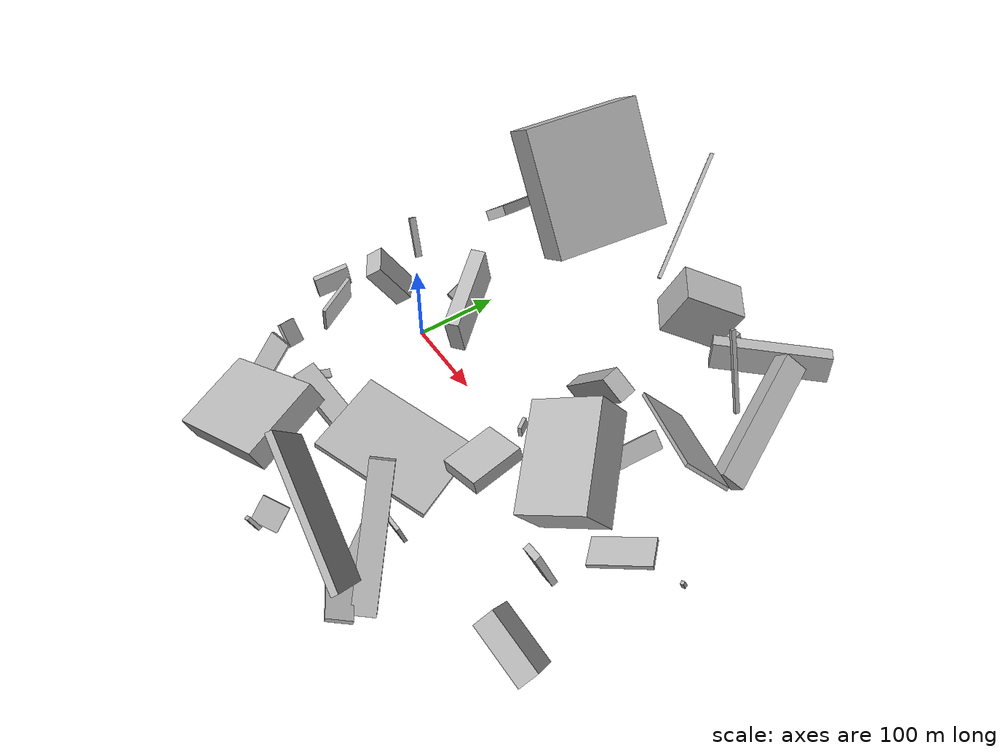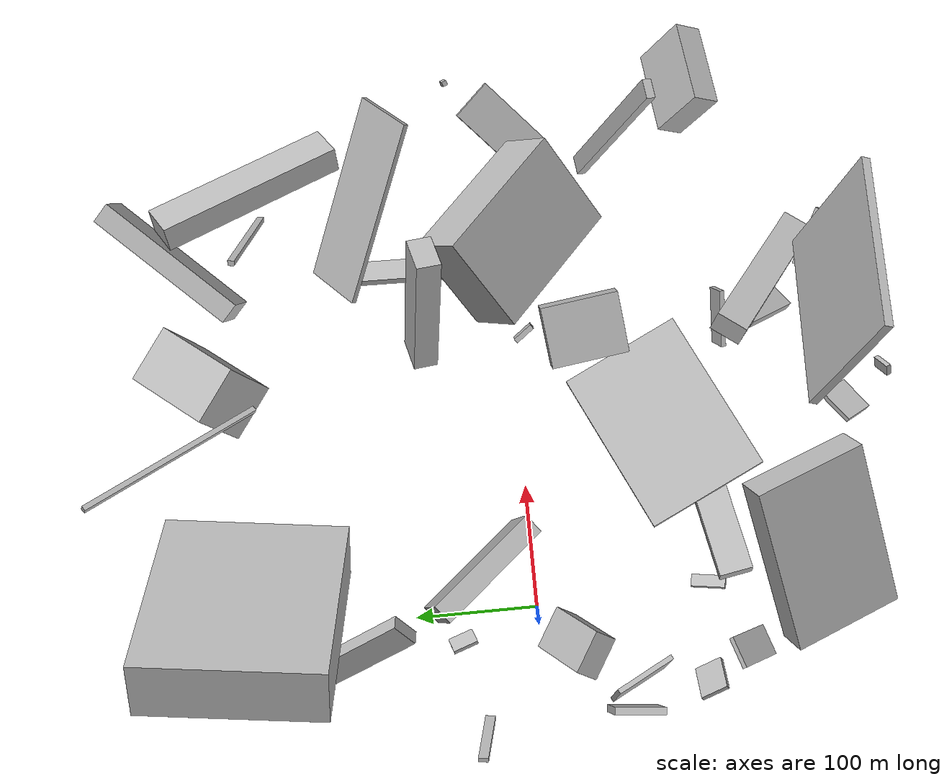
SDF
<sdf version="1.6">
 <world name="default">
  <scene>
   <sky><clouds><speed>12</speed></clouds></sky>
   <ambient>0.4 0.4 0.4 1</ambient>
   <background>0.7 0.7 0.7 1</background>
   <shadows>1</shadows>
  </scene>
  <gravity>0 0 -9.8066</gravity>
  <magnetic_field>6e-06 2.3e-05 -4.2e-05</magnetic_field>
  <physics default="0" name="default_physics" type="ode">
   <ode>
    <solver>
     <type>quick</type>
     <iters>10</iters>
     <sor>1.0</sor>
     <use_dynamic_moi_rescaling>0</use_dynamic_moi_rescaling>
    </solver>
    <constraints>
     <cfm>0</cfm>
     <erp>0.2</erp>
     <contact_max_correcting_vel>100</contact_max_correcting_vel>
     <contact_surface_layer>0.001</contact_surface_layer>
    </constraints>
   </ode>
   <max_step_size>0.004</max_step_size>
   <real_time_factor>1</real_time_factor>
   <real_time_update_rate>250</real_time_update_rate>
  </physics>
  <light name="sun" type="directional">
   <pose>0 0 10 0 0 0</pose>
   <diffuse>0.8 0.8 0.8 1</diffuse>
   <specular>0.2 0.2 0.2 1</specular>
   <attenuation>
    <range>1000</range>
    <constant>0.9</constant>
    <linear>0.01</linear>
    <quadratic>0.001</quadratic>
   </attenuation>
   <direction>-0.5 0.1 -0.9</direction>
  </light>
  <model name="building_1">
   <static>0</static>
   <pose>158.08201292369395 -257.6694241254826 17.241823803892835 1.1759356580311278 0.6087822742997112 -1.1729489631092656</pose>
   <link name="link">
    <gravity>0</gravity>
    <pose>0 0 15.0 0 0 0</pose>
    <collision name="collision"><geometry><box><size>28 4 30</size></box></geometry></collision>
    <visual name="visual">
     <cast_shadows>0</cast_shadows>
     <geometry><box><size>28 4 30</size></box></geometry>
     <material>
      <script>
       <uri>model://HANNAS_wall/materials/scripts</uri>
       <uri>model://HANNAS_wall/materials/textures</uri>
       <name>vrc/HANNAS_wall</name>
      </script>
     </material>
    </visual>
   </link>
  </model>
  <model name="building_2">
   <static>0</static>
   <pose>228.38957552910387 276.1913152473966 18.58643334928423 0.8368209683425826 -1.3527665762094954 -2.2299393907137524</pose>
   <link name="link">
    <gravity>0</gravity>
    <pose>0 0 7.0 0 0 0</pose>
    <collision name="collision"><geometry><box><size>30 24 14</size></box></geometry></collision>
    <visual name="visual">
     <cast_shadows>0</cast_shadows>
     <geometry><box><size>30 24 14</size></box></geometry>
     <material>
      <script>
       <uri>model://HANNAS_wall/materials/scripts</uri>
       <uri>model://HANNAS_wall/materials/textures</uri>
       <name>vrc/HANNAS_wall</name>
      </script>
     </material>
    </visual>
   </link>
  </model>
  <model name="building_3">
   <static>0</static>
   <pose>-73.63025985590721 -126.66632645295493 16.348650918210026 -1.0559939253068562 -0.8061386053319477 -3.1069106370532205</pose>
   <link name="link">
    <gravity>0</gravity>
    <pose>0 0 12.0 0 0 0</pose>
    <collision name="collision"><geometry><box><size>29 4 24</size></box></geometry></collision>
    <visual name="visual">
     <cast_shadows>0</cast_shadows>
     <geometry><box><size>29 4 24</size></box></geometry>
     <material>
      <script>
       <uri>model://HANNAS_wall/materials/scripts</uri>
       <uri>model://HANNAS_wall/materials/textures</uri>
       <name>vrc/HANNAS_wall</name>
      </script>
     </material>
    </visual>
   </link>
  </model>
  <model name="building_4">
   <static>0</static>
   <pose>275.0975432354596 136.8514776186292 51.67618885070994 -0.9597505385460232 0.7846900366965949 -1.5404241153357165</pose>
   <link name="link">
    <gravity>0</gravity>
    <pose>0 0 75.0 0 0 0</pose>
    <collision name="collision"><geometry><box><size>4 53 150</size></box></geometry></collision>
    <visual name="visual">
     <cast_shadows>0</cast_shadows>
     <geometry><box><size>4 53 150</size></box></geometry>
     <material>
      <script>
       <uri>model://HANNAS_wall/materials/scripts</uri>
       <uri>model://HANNAS_wall/materials/textures</uri>
       <name>vrc/HANNAS_wall</name>
      </script>
     </material>
    </visual>
   </link>
  </model>
  <model name="building_5">
   <static>0</static>
   <pose>305.8679926692404 7.878734348791873 70.53475906793574 0.4233290998863652 -0.5003996843155747 0.5929087097435953</pose>
   <link name="link">
    <gravity>0</gravity>
    <pose>0 0 24.5 0 0 0</pose>
    <collision name="collision"><geometry><box><size>82 118 49</size></box></geometry></collision>
    <visual name="visual">
     <cast_shadows>0</cast_shadows>
     <geometry><box><size>82 118 49</size></box></geometry>
     <material>
      <script>
       <uri>model://HANNAS_wall/materials/scripts</uri>
       <uri>model://HANNAS_wall/materials/textures</uri>
       <name>vrc/HANNAS_wall</name>
      </script>
     </material>
    </visual>
   </link>
  </model>
  <model name="building_6">
   <static>0</static>
   <pose>-79.58050956523323 45.52393119245544 39.72220743574811 -0.12280819347652301 -0.5148002949094109 -0.05647966265904579</pose>
   <link name="link">
    <gravity>0</gravity>
    <pose>0 0 24.5 0 0 0</pose>
    <collision name="collision"><geometry><box><size>4 8 49</size></box></geometry></collision>
    <visual name="visual">
     <cast_shadows>0</cast_shadows>
     <geometry><box><size>4 8 49</size></box></geometry>
     <material>
      <script>
       <uri>model://HANNAS_wall/materials/scripts</uri>
       <uri>model://HANNAS_wall/materials/textures</uri>
       <name>vrc/HANNAS_wall</name>
      </script>
     </material>
    </visual>
   </link>
  </model>
  <model name="building_7">
   <static>0</static>
   <pose>385.42476027139793 132.17518853048253 44.66316636843997 1.0730829654481486 0.8546077688751499 -3.117853075915193</pose>
   <link name="link">
    <gravity>0</gravity>
    <pose>0 0 75.0 0 0 0</pose>
    <collision name="collision"><geometry><box><size>21 28 150</size></box></geometry></collision>
    <visual name="visual">
     <cast_shadows>0</cast_shadows>
     <geometry><box><size>21 28 150</size></box></geometry>
     <material>
      <script>
       <uri>model://HANNAS_wall/materials/scripts</uri>
       <uri>model://HANNAS_wall/materials/textures</uri>
       <name>vrc/HANNAS_wall</name>
      </script>
     </material>
    </visual>
   </link>
  </model>
  <model name="building_8">
   <static>0</static>
   <pose>216.5259605064437 72.62493990349034 59.762055815550475 0.28927325394465914 0.6171794518009955 0.28268091921587896</pose>
   <link name="link">
    <gravity>0</gravity>
    <pose>0 0 57.5 0 0 0</pose>
    <collision name="collision"><geometry><box><size>29 19 115</size></box></geometry></collision>
    <visual name="visual">
     <cast_shadows>0</cast_shadows>
     <geometry><box><size>29 19 115</size></box></geometry>
     <material>
      <script>
       <uri>model://HANNAS_wall/materials/scripts</uri>
       <uri>model://HANNAS_wall/materials/textures</uri>
       <name>vrc/HANNAS_wall</name>
      </script>
     </material>
    </visual>
   </link>
  </model>
  <model name="building_9">
   <static>0</static>
   <pose>121.27934465914367 -70.93715313184552 21.128263305373515 1.5748436657842808 -1.35691102034158 0.44038809225841946</pose>
   <link name="link">
    <gravity>0</gravity>
    <pose>0 0 51.0 0 0 0</pose>
    <collision name="collision"><geometry><box><size>7 139 102</size></box></geometry></collision>
    <visual name="visual">
     <cast_shadows>0</cast_shadows>
     <geometry><box><size>7 139 102</size></box></geometry>
     <material>
      <script>
       <uri>model://HANNAS_wall/materials/scripts</uri>
       <uri>model://HANNAS_wall/materials/textures</uri>
       <name>vrc/HANNAS_wall</name>
      </script>
     </material>
    </visual>
   </link>
  </model>
  <model name="building_10">
   <static>0</static>
   <pose>200.383680689203 234.0221336000441 54.80245564666838 0.41826751191937495 -0.034402580651764325 2.509333237757612</pose>
   <link name="link">
    <gravity>0</gravity>
    <pose>0 0 30.0 0 0 0</pose>
    <collision name="collision"><geometry><box><size>46 72 60</size></box></geometry></collision>
    <visual name="visual">
     <cast_shadows>0</cast_shadows>
     <geometry><box><size>46 72 60</size></box></geometry>
     <material>
      <script>
       <uri>model://HANNAS_wall/materials/scripts</uri>
       <uri>model://HANNAS_wall/materials/textures</uri>
       <name>vrc/HANNAS_wall</name>
      </script>
     </material>
    </visual>
   </link>
  </model>
  <model name="building_11">
   <static>0</static>
   <pose>79.96062565985606 206.66498411087713 104.57247178295954 0.01802455723620245 -0.636370646368807 -0.14380296180324625</pose>
   <link name="link">
    <gravity>0</gravity>
    <pose>0 0 75.0 0 0 0</pose>
    <collision name="collision"><geometry><box><size>48 138 150</size></box></geometry></collision>
    <visual name="visual">
     <cast_shadows>0</cast_shadows>
     <geometry><box><size>48 138 150</size></box></geometry>
     <material>
      <script>
       <uri>model://HANNAS_wall/materials/scripts</uri>
       <uri>model://HANNAS_wall/materials/textures</uri>
       <name>vrc/HANNAS_wall</name>
      </script>
     </material>
    </visual>
   </link>
  </model>
  <model name="building_12">
   <static>0</static>
   <pose>224.4309948084175 -167.0699410593514 22.892888956155524 -1.7999680427729399 0.2535183848331891 3.116439039784371</pose>
   <link name="link">
    <gravity>0</gravity>
    <pose>0 0 2.0 0 0 0</pose>
    <collision name="collision"><geometry><box><size>46 21 4</size></box></geometry></collision>
    <visual name="visual">
     <cast_shadows>0</cast_shadows>
     <geometry><box><size>46 21 4</size></box></geometry>
     <material>
      <script>
       <uri>model://HANNAS_wall/materials/scripts</uri>
       <uri>model://HANNAS_wall/materials/textures</uri>
       <name>vrc/HANNAS_wall</name>
      </script>
     </material>
    </visual>
   </link>
  </model>
  <model name="building_13">
   <static>0</static>
   <pose>405.70244840304923 -137.62182526239624 37.169055673819564 0.6220821605747783 0.3490231923631773 0.09895231617825283</pose>
   <link name="link">
    <gravity>0</gravity>
    <pose>0 0 24.0 0 0 0</pose>
    <collision name="collision"><geometry><box><size>67 23 48</size></box></geometry></collision>
    <visual name="visual">
     <cast_shadows>0</cast_shadows>
     <geometry><box><size>67 23 48</size></box></geometry>
     <material>
      <script>
       <uri>model://HANNAS_wall/materials/scripts</uri>
       <uri>model://HANNAS_wall/materials/textures</uri>
       <name>vrc/HANNAS_wall</name>
      </script>
     </material>
    </visual>
   </link>
  </model>
  <model name="building_14">
   <static>0</static>
   <pose>35.842032216103256 35.167403083344766 69.60417254360397 1.5365853378120118 -0.24611349932090337 2.2469730066942595</pose>
   <link name="link">
    <gravity>0</gravity>
    <pose>0 0 8.5 0 0 0</pose>
    <collision name="collision"><geometry><box><size>100 56 17</size></box></geometry></collision>
    <visual name="visual">
     <cast_shadows>0</cast_shadows>
     <geometry><box><size>100 56 17</size></box></geometry>
     <material>
      <script>
       <uri>model://HANNAS_wall/materials/scripts</uri>
       <uri>model://HANNAS_wall/materials/textures</uri>
       <name>vrc/HANNAS_wall</name>
      </script>
     </material>
    </visual>
   </link>
  </model>
  <model name="building_15">
   <static>0</static>
   <pose>226.15814995604413 -57.48973263107129 37.11931119584247 0.04811328892627683 -0.23743563111233792 0.12075919198541457</pose>
   <link name="link">
    <gravity>0</gravity>
    <pose>0 0 8.0 0 0 0</pose>
    <collision name="collision"><geometry><box><size>50 63 16</size></box></geometry></collision>
    <visual name="visual">
     <cast_shadows>0</cast_shadows>
     <geometry><box><size>50 63 16</size></box></geometry>
     <material>
      <script>
       <uri>model://HANNAS_wall/materials/scripts</uri>
       <uri>model://HANNAS_wall/materials/textures</uri>
       <name>vrc/HANNAS_wall</name>
      </script>
     </material>
    </visual>
   </link>
  </model>
  <model name="building_16">
   <static>0</static>
   <pose>302.3253435042612 -253.6513665033827 90.88210284003023 0.469387581003383 -0.9538694973448872 -0.6633868299580744</pose>
   <link name="link">
    <gravity>0</gravity>
    <pose>0 0 75.0 0 0 0</pose>
    <collision name="collision"><geometry><box><size>111 7 150</size></box></geometry></collision>
    <visual name="visual">
     <cast_shadows>0</cast_shadows>
     <geometry><box><size>111 7 150</size></box></geometry>
     <material>
      <script>
       <uri>model://HANNAS_wall/materials/scripts</uri>
       <uri>model://HANNAS_wall/materials/textures</uri>
       <name>vrc/HANNAS_wall</name>
      </script>
     </material>
    </visual>
   </link>
  </model>
  <model name="building_17">
   <static>0</static>
   <pose>-43.527701254435335 220.78288916978138 86.35852591867486 0.8802764431292286 0.8257085458996849 -0.11124310279611437</pose>
   <link name="link">
    <gravity>0</gravity>
    <pose>0 0 75.0 0 0 0</pose>
    <collision name="collision"><geometry><box><size>11 23 150</size></box></geometry></collision>
    <visual name="visual">
     <cast_shadows>0</cast_shadows>
     <geometry><box><size>11 23 150</size></box></geometry>
     <material>
      <script>
       <uri>model://HANNAS_wall/materials/scripts</uri>
       <uri>model://HANNAS_wall/materials/textures</uri>
       <name>vrc/HANNAS_wall</name>
      </script>
     </material>
    </visual>
   </link>
  </model>
  <model name="building_18">
   <static>0</static>
   <pose>298.05860222426196 -266.1673396562099 35.60202423335008 1.923487091743966 -0.2935525634515207 -2.124209222297914</pose>
   <link name="link">
    <gravity>0</gravity>
    <pose>0 0 24.5 0 0 0</pose>
    <collision name="collision"><geometry><box><size>27 4 49</size></box></geometry></collision>
    <visual name="visual">
     <cast_shadows>0</cast_shadows>
     <geometry><box><size>27 4 49</size></box></geometry>
     <material>
      <script>
       <uri>model://HANNAS_wall/materials/scripts</uri>
       <uri>model://HANNAS_wall/materials/textures</uri>
       <name>vrc/HANNAS_wall</name>
      </script>
     </material>
    </visual>
   </link>
  </model>
  <model name="building_19">
   <static>0</static>
   <pose>226.19758394982478 -8.451173420106622 65.85134098285737 -2.4840107212658347 -1.346080959041846 3.136000336274892</pose>
   <link name="link">
    <gravity>0</gravity>
    <pose>0 0 2.0 0 0 0</pose>
    <collision name="collision"><geometry><box><size>11 17 4</size></box></geometry></collision>
    <visual name="visual">
     <cast_shadows>0</cast_shadows>
     <geometry><box><size>11 17 4</size></box></geometry>
     <material>
      <script>
       <uri>model://HANNAS_wall/materials/scripts</uri>
       <uri>model://HANNAS_wall/materials/textures</uri>
       <name>vrc/HANNAS_wall</name>
      </script>
     </material>
    </visual>
   </link>
  </model>
  <model name="building_20">
   <static>0</static>
   <pose>259.1933397785576 -191.5862818052468 61.096753508295535 1.383780396361651 -0.8195570267815211 -0.5023616128084755</pose>
   <link name="link">
    <gravity>0</gravity>
    <pose>0 0 12.5 0 0 0</pose>
    <collision name="collision"><geometry><box><size>17 150 25</size></box></geometry></collision>
    <visual name="visual">
     <cast_shadows>0</cast_shadows>
     <geometry><box><size>17 150 25</size></box></geometry>
     <material>
      <script>
       <uri>model://HANNAS_wall/materials/scripts</uri>
       <uri>model://HANNAS_wall/materials/textures</uri>
       <name>vrc/HANNAS_wall</name>
      </script>
     </material>
    </visual>
   </link>
  </model>
  <model name="building_21">
   <static>0</static>
   <pose>59.079625360184494 -153.0407798189851 27.576028834646166 0.37998704604289396 -0.007979940974029516 1.7451003073224234</pose>
   <link name="link">
    <gravity>0</gravity>
    <pose>0 0 6.5 0 0 0</pose>
    <collision name="collision"><geometry><box><size>27 94 13</size></box></geometry></collision>
    <visual name="visual">
     <cast_shadows>0</cast_shadows>
     <geometry><box><size>27 94 13</size></box></geometry>
     <material>
      <script>
       <uri>model://HANNAS_wall/materials/scripts</uri>
       <uri>model://HANNAS_wall/materials/textures</uri>
       <name>vrc/HANNAS_wall</name>
      </script>
     </material>
    </visual>
   </link>
  </model>
  <model name="building_22">
   <static>0</static>
   <pose>283.94608652988006 52.22546603142442 14.993941383417841 -0.08475866443249563 0.6947430045200008 -0.07994380883181963</pose>
   <link name="link">
    <gravity>0</gravity>
    <pose>0 0 2.5 0 0 0</pose>
    <collision name="collision"><geometry><box><size>22 150 5</size></box></geometry></collision>
    <visual name="visual">
     <cast_shadows>0</cast_shadows>
     <geometry><box><size>22 150 5</size></box></geometry>
     <material>
      <script>
       <uri>model://HANNAS_wall/materials/scripts</uri>
       <uri>model://HANNAS_wall/materials/textures</uri>
       <name>vrc/HANNAS_wall</name>
      </script>
     </material>
    </visual>
   </link>
  </model>
  <model name="building_23">
   <static>0</static>
   <pose>-16.03438259032801 64.64808614149055 12.04805009651788 -0.8564229889120394 -0.1262879049649051 1.885725959307969</pose>
   <link name="link">
    <gravity>0</gravity>
    <pose>0 0 6.5 0 0 0</pose>
    <collision name="collision"><geometry><box><size>21 4 13</size></box></geometry></collision>
    <visual name="visual">
     <cast_shadows>0</cast_shadows>
     <geometry><box><size>21 4 13</size></box></geometry>
     <material>
      <script>
       <uri>model://HANNAS_wall/materials/scripts</uri>
       <uri>model://HANNAS_wall/materials/textures</uri>
       <name>vrc/HANNAS_wall</name>
      </script>
     </material>
    </visual>
   </link>
  </model>
  <model name="building_24">
   <static>0</static>
   <pose>168.88354534723237 -290.53351582228277 57.31229777636473 0.9239891372605091 -0.23084603026543 1.9078911956608726</pose>
   <link name="link">
    <gravity>0</gravity>
    <pose>0 0 4.5 0 0 0</pose>
    <collision name="collision"><geometry><box><size>4 16 9</size></box></geometry></collision>
    <visual name="visual">
     <cast_shadows>0</cast_shadows>
     <geometry><box><size>4 16 9</size></box></geometry>
     <material>
      <script>
       <uri>model://HANNAS_wall/materials/scripts</uri>
       <uri>model://HANNAS_wall/materials/textures</uri>
       <name>vrc/HANNAS_wall</name>
      </script>
     </material>
    </visual>
   </link>
  </model>
  <model name="building_25">
   <static>0</static>
   <pose>223.9402797322493 -185.69994618472242 38.871733990768796 -2.742228888908568 0.7246567469381249 2.4773671571878735</pose>
   <link name="link">
    <gravity>0</gravity>
    <pose>0 0 28.0 0 0 0</pose>
    <collision name="collision"><geometry><box><size>7 24 56</size></box></geometry></collision>
    <visual name="visual">
     <cast_shadows>0</cast_shadows>
     <geometry><box><size>7 24 56</size></box></geometry>
     <material>
      <script>
       <uri>model://HANNAS_wall/materials/scripts</uri>
       <uri>model://HANNAS_wall/materials/textures</uri>
       <name>vrc/HANNAS_wall</name>
      </script>
     </material>
    </visual>
   </link>
  </model>
  <model name="building_26">
   <static>0</static>
   <pose>-56.880510000062365 -175.69822101948202 29.83291441440175 1.8396796976182466 0.6869547300863401 2.062839050343259</pose>
   <link name="link">
    <gravity>0</gravity>
    <pose>0 0 13.0 0 0 0</pose>
    <collision name="collision"><geometry><box><size>4 45 26</size></box></geometry></collision>
    <visual name="visual">
     <cast_shadows>0</cast_shadows>
     <geometry><box><size>4 45 26</size></box></geometry>
     <material>
      <script>
       <uri>model://HANNAS_wall/materials/scripts</uri>
       <uri>model://HANNAS_wall/materials/textures</uri>
       <name>vrc/HANNAS_wall</name>
      </script>
     </material>
    </visual>
   </link>
  </model>
  <model name="building_27">
   <static>0</static>
   <pose>367.9570067733086 -93.6772947886152 81.13233620970868 1.7641467407704614 -0.34312869941126295 1.6291023383155403</pose>
   <link name="link">
    <gravity>0</gravity>
    <pose>0 0 7.5 0 0 0</pose>
    <collision name="collision"><geometry><box><size>7 150 15</size></box></geometry></collision>
    <visual name="visual">
     <cast_shadows>0</cast_shadows>
     <geometry><box><size>7 150 15</size></box></geometry>
     <material>
      <script>
       <uri>model://HANNAS_wall/materials/scripts</uri>
       <uri>model://HANNAS_wall/materials/textures</uri>
       <name>vrc/HANNAS_wall</name>
      </script>
     </material>
    </visual>
   </link>
  </model>
  <model name="building_28">
   <static>0</static>
   <pose>261.39766837527225 212.86696131641037 78.25886968251145 1.5676942077056844 -1.3976423280454298 2.3862957653896415</pose>
   <link name="link">
    <gravity>0</gravity>
    <pose>0 0 63.0 0 0 0</pose>
    <collision name="collision"><geometry><box><size>32 17 126</size></box></geometry></collision>
    <visual name="visual">
     <cast_shadows>0</cast_shadows>
     <geometry><box><size>32 17 126</size></box></geometry>
     <material>
      <script>
       <uri>model://HANNAS_wall/materials/scripts</uri>
       <uri>model://HANNAS_wall/materials/textures</uri>
       <name>vrc/HANNAS_wall</name>
      </script>
     </material>
    </visual>
   </link>
  </model>
  <model name="building_29">
   <static>0</static>
   <pose>-48.33101580385296 -100.52153105287705 39.13189948470187 -0.8511399929686215 -1.2415872731073072 -0.24793093477400238</pose>
   <link name="link">
    <gravity>0</gravity>
    <pose>0 0 25.5 0 0 0</pose>
    <collision name="collision"><geometry><box><size>49 4 51</size></box></geometry></collision>
    <visual name="visual">
     <cast_shadows>0</cast_shadows>
     <geometry><box><size>49 4 51</size></box></geometry>
     <material>
      <script>
       <uri>model://HANNAS_wall/materials/scripts</uri>
       <uri>model://HANNAS_wall/materials/textures</uri>
       <name>vrc/HANNAS_wall</name>
      </script>
     </material>
    </visual>
   </link>
  </model>
  <model name="building_30">
   <static>0</static>
   <pose>12.241853532942216 -127.62691641988019 20.459645507790363 -1.2302990780160525 -0.3838555363540205 2.903627483871733</pose>
   <link name="link">
    <gravity>0</gravity>
    <pose>0 0 14.0 0 0 0</pose>
    <collision name="collision"><geometry><box><size>10 4 28</size></box></geometry></collision>
    <visual name="visual">
     <cast_shadows>0</cast_shadows>
     <geometry><box><size>10 4 28</size></box></geometry>
     <material>
      <script>
       <uri>model://HANNAS_wall/materials/scripts</uri>
       <uri>model://HANNAS_wall/materials/textures</uri>
       <name>vrc/HANNAS_wall</name>
      </script>
     </material>
    </visual>
   </link>
  </model>
  <model name="building_31">
   <static>0</static>
   <pose>102.22705278459748 -214.9143795439408 82.3672367588407 2.6761296029972037 -1.070293981641505 -2.3850736334365266</pose>
   <link name="link">
    <gravity>0</gravity>
    <pose>0 0 75.0 0 0 0</pose>
    <collision name="collision"><geometry><box><size>26 94 150</size></box></geometry></collision>
    <visual name="visual">
     <cast_shadows>0</cast_shadows>
     <geometry><box><size>26 94 150</size></box></geometry>
     <material>
      <script>
       <uri>model://HANNAS_wall/materials/scripts</uri>
       <uri>model://HANNAS_wall/materials/textures</uri>
       <name>vrc/HANNAS_wall</name>
      </script>
     </material>
    </visual>
   </link>
  </model>
  <model name="building_32">
   <static>0</static>
   <pose>184.46185955820448 195.60849692761255 135.76817522568155 0.3945207445395452 0.9336019572260813 2.5332791568018846</pose>
   <link name="link">
    <gravity>0</gravity>
    <pose>0 0 74.5 0 0 0</pose>
    <collision name="collision"><geometry><box><size>4 4 149</size></box></geometry></collision>
    <visual name="visual">
     <cast_shadows>0</cast_shadows>
     <geometry><box><size>4 4 149</size></box></geometry>
     <material>
      <script>
       <uri>model://HANNAS_wall/materials/scripts</uri>
       <uri>model://HANNAS_wall/materials/textures</uri>
       <name>vrc/HANNAS_wall</name>
      </script>
     </material>
    </visual>
   </link>
  </model>
  <model name="building_33">
   <static>0</static>
   <pose>-76.63462785594803 -70.94473434978215 61.80101860973526 1.4423174857250411 0.11463229560477625 -1.6933240506750058</pose>
   <link name="link">
    <gravity>0</gravity>
    <pose>0 0 3.0 0 0 0</pose>
    <collision name="collision"><geometry><box><size>41 32 6</size></box></geometry></collision>
    <visual name="visual">
     <cast_shadows>0</cast_shadows>
     <geometry><box><size>41 32 6</size></box></geometry>
     <material>
      <script>
       <uri>model://HANNAS_wall/materials/scripts</uri>
       <uri>model://HANNAS_wall/materials/textures</uri>
       <name>vrc/HANNAS_wall</name>
      </script>
     </material>
    </visual>
   </link>
  </model>
  <model name="building_34">
   <static>0</static>
   <pose>439.036525528766 36.63554586234393 10.712001540114361 -2.717402132333962 1.1369408639032628 0.7758333192324551</pose>
   <link name="link">
    <gravity>0</gravity>
    <pose>0 0 2.0 0 0 0</pose>
    <collision name="collision"><geometry><box><size>7 4 4</size></box></geometry></collision>
    <visual name="visual">
     <cast_shadows>0</cast_shadows>
     <geometry><box><size>7 4 4</size></box></geometry>
     <material>
      <script>
       <uri>model://HANNAS_wall/materials/scripts</uri>
       <uri>model://HANNAS_wall/materials/textures</uri>
       <name>vrc/HANNAS_wall</name>
      </script>
     </material>
    </visual>
   </link>
  </model>
  <model name="building_35">
   <static>0</static>
   <pose>-2.3698648692232966 -35.840610009006824 95.36927275080619 1.5365242470731577 0.5818695373561615 -2.131704873628347</pose>
   <link name="link">
    <gravity>0</gravity>
    <pose>0 0 17.0 0 0 0</pose>
    <collision name="collision"><geometry><box><size>20 56 34</size></box></geometry></collision>
    <visual name="visual">
     <cast_shadows>0</cast_shadows>
     <geometry><box><size>20 56 34</size></box></geometry>
     <material>
      <script>
       <uri>model://HANNAS_wall/materials/scripts</uri>
       <uri>model://HANNAS_wall/materials/textures</uri>
       <name>vrc/HANNAS_wall</name>
      </script>
     </material>
    </visual>
   </link>
  </model>
  <model name="building_36">
   <static>0</static>
   <pose>1.0843517169100991 195.99380487542504 61.45178136539166 0.24300700646584722 -0.08999798661429519 -0.8266846765453153</pose>
   <link name="link">
    <gravity>0</gravity>
    <pose>0 0 16.5 0 0 0</pose>
    <collision name="collision"><geometry><box><size>13 16 33</size></box></geometry></collision>
    <visual name="visual">
     <cast_shadows>0</cast_shadows>
     <geometry><box><size>13 16 33</size></box></geometry>
     <material>
      <script>
       <uri>model://HANNAS_wall/materials/scripts</uri>
       <uri>model://HANNAS_wall/materials/textures</uri>
       <name>vrc/HANNAS_wall</name>
      </script>
     </material>
    </visual>
   </link>
  </model>
  <model name="building_37">
   <static>0</static>
   <pose>367.85246669696636 -29.21524135745362 35.59151112691866 -1.2708559295472162 -0.07356761650955519 -0.8265224522909886</pose>
   <link name="link">
    <gravity>0</gravity>
    <pose>0 0 33.0 0 0 0</pose>
    <collision name="collision"><geometry><box><size>34 5 66</size></box></geometry></collision>
    <visual name="visual">
     <cast_shadows>0</cast_shadows>
     <geometry><box><size>34 5 66</size></box></geometry>
     <material>
      <script>
       <uri>model://HANNAS_wall/materials/scripts</uri>
       <uri>model://HANNAS_wall/materials/textures</uri>
       <name>vrc/HANNAS_wall</name>
      </script>
     </material>
    </visual>
   </link>
  </model>
  <model name="building_38">
   <static>0</static>
   <pose>333.07343977068797 188.31142397896838 63.55823445822544 0.4581265033120111 -0.05622902606044519 -1.7467182914137247</pose>
   <link name="link">
    <gravity>0</gravity>
    <pose>0 0 47.5 0 0 0</pose>
    <collision name="collision"><geometry><box><size>5 4 95</size></box></geometry></collision>
    <visual name="visual">
     <cast_shadows>0</cast_shadows>
     <geometry><box><size>5 4 95</size></box></geometry>
     <material>
      <script>
       <uri>model://HANNAS_wall/materials/scripts</uri>
       <uri>model://HANNAS_wall/materials/textures</uri>
       <name>vrc/HANNAS_wall</name>
      </script>
     </material>
    </visual>
   </link>
  </model>
 </world>
</sdf>
